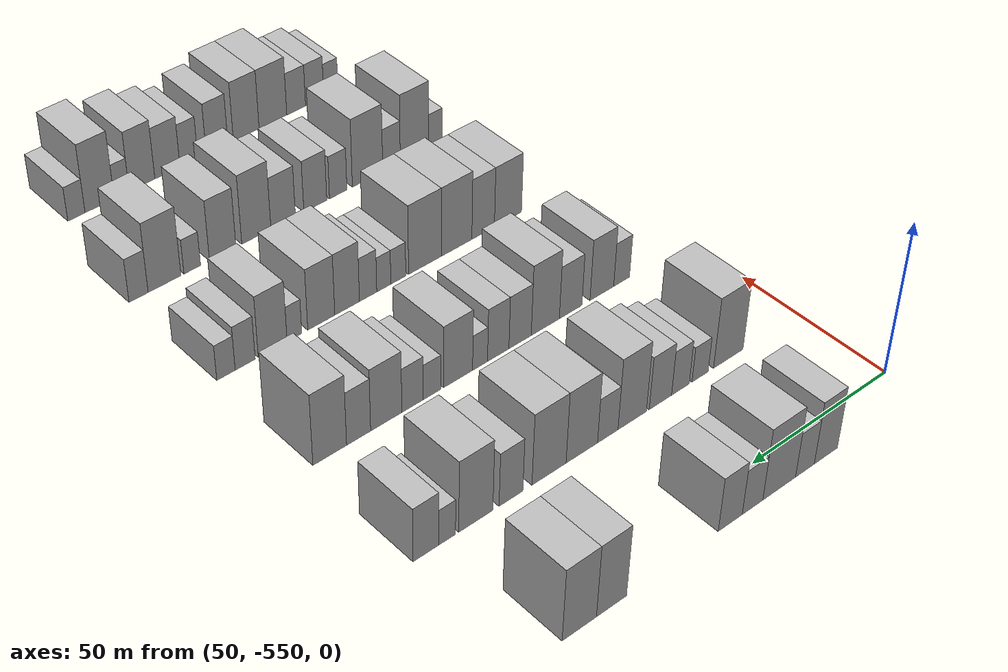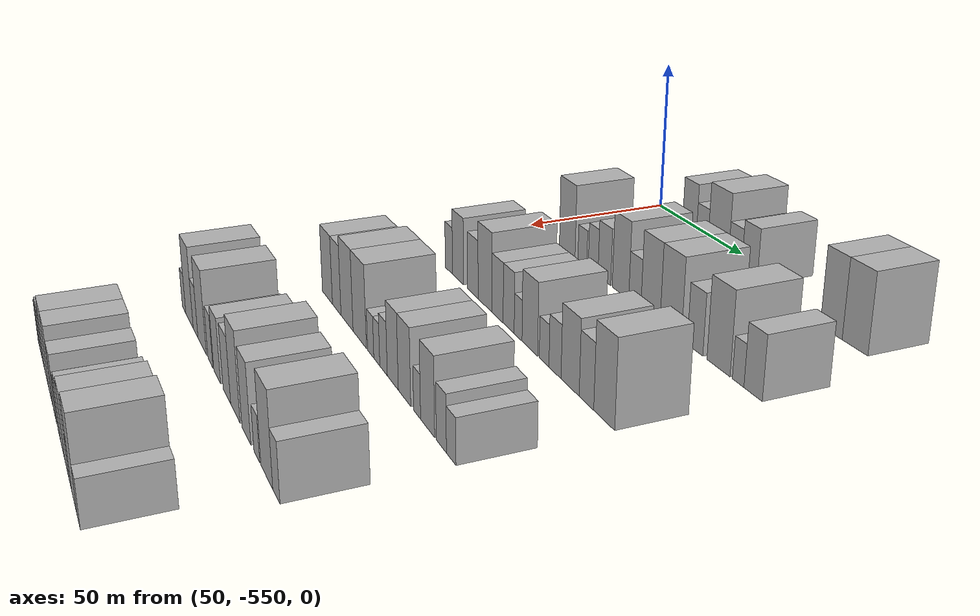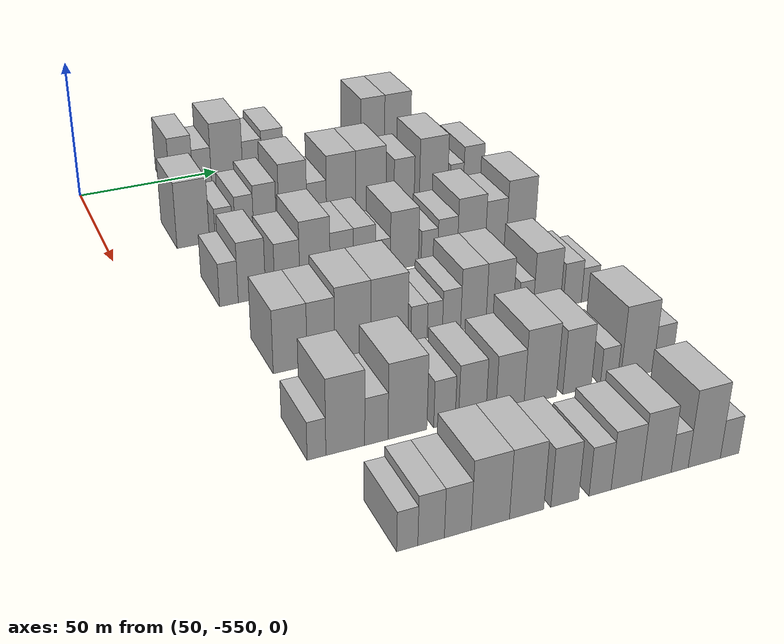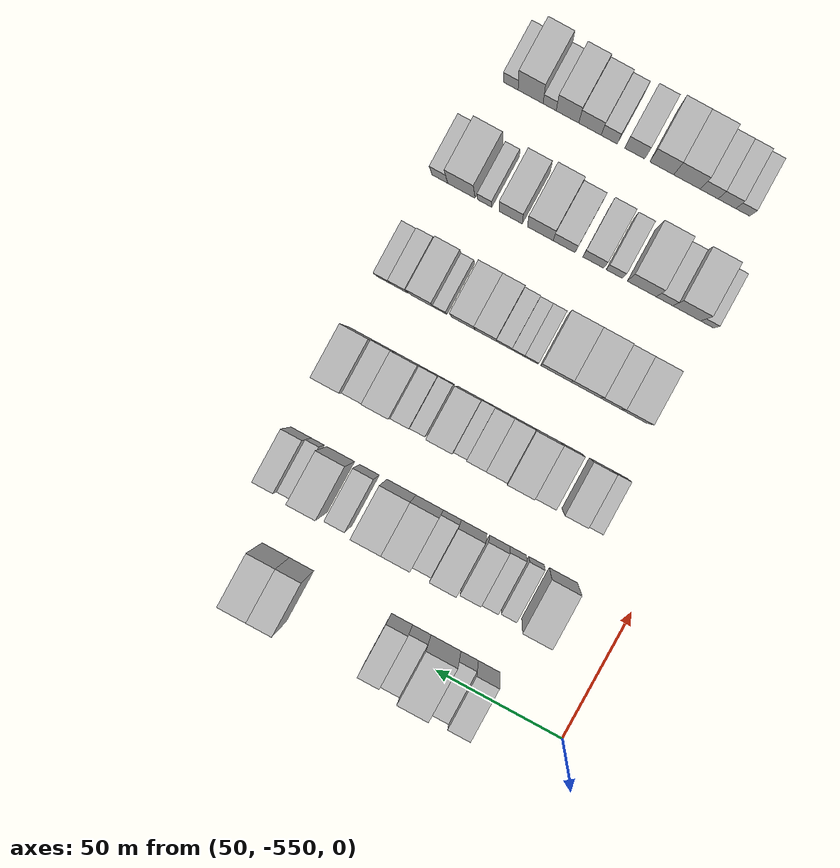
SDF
<sdf version="1.6">
 <world name="default">
  <model name="building_13">
   <static>1</static>
   <pose>50.0000 -515.6574 0 0.000000 0.000000 0.000000</pose>
   <link name="link">
    <pose>0 0 10.50 0 0 0</pose>
    <collision name="collision"><geometry><box><size>20.0000 8.5687 21.0000</size></box></geometry></collision>
    <visual name="visual">
     <cast_shadows>0</cast_shadows>
     <geometry><box><size>20.0000 8.5687 21.0000</size></box></geometry>
     <material>
      <script>
       <uri>model://HANNAS_wall/materials/scripts</uri>
       <uri>model://HANNAS_wall/materials/textures</uri>
       <name>vrc/HANNAS_wall</name>
      </script>
     </material>
    </visual>
   </link>
  </model>
  <model name="building_14">
   <static>1</static>
   <pose>50.0000 -507.9430 0 0.000000 0.000000 0.000000</pose>
   <link name="link">
    <pose>0 0 7.50 0 0 0</pose>
    <collision name="collision"><geometry><box><size>20.0000 6.8602 15.0000</size></box></geometry></collision>
    <visual name="visual">
     <cast_shadows>0</cast_shadows>
     <geometry><box><size>20.0000 6.8602 15.0000</size></box></geometry>
     <material>
      <script>
       <uri>model://HANNAS_wall/materials/scripts</uri>
       <uri>model://HANNAS_wall/materials/textures</uri>
       <name>vrc/HANNAS_wall</name>
      </script>
     </material>
    </visual>
   </link>
  </model>
  <model name="building_15">
   <static>1</static>
   <pose>50.0000 -498.6184 0 0.000000 0.000000 0.000000</pose>
   <link name="link">
    <pose>0 0 12.00 0 0 0</pose>
    <collision name="collision"><geometry><box><size>20.0000 11.7889 24.0000</size></box></geometry></collision>
    <visual name="visual">
     <cast_shadows>0</cast_shadows>
     <geometry><box><size>20.0000 11.7889 24.0000</size></box></geometry>
     <material>
      <script>
       <uri>model://HANNAS_wall/materials/scripts</uri>
       <uri>model://HANNAS_wall/materials/textures</uri>
       <name>vrc/HANNAS_wall</name>
      </script>
     </material>
    </visual>
   </link>
  </model>
  <model name="building_16">
   <static>1</static>
   <pose>50.0000 -489.0953 0 0.000000 0.000000 0.000000</pose>
   <link name="link">
    <pose>0 0 7.50 0 0 0</pose>
    <collision name="collision"><geometry><box><size>20.0000 7.2573 15.0000</size></box></geometry></collision>
    <visual name="visual">
     <cast_shadows>0</cast_shadows>
     <geometry><box><size>20.0000 7.2573 15.0000</size></box></geometry>
     <material>
      <script>
       <uri>model://HANNAS_wall/materials/scripts</uri>
       <uri>model://HANNAS_wall/materials/textures</uri>
       <name>vrc/HANNAS_wall</name>
      </script>
     </material>
    </visual>
   </link>
  </model>
  <model name="building_17">
   <static>1</static>
   <pose>50.0000 -481.3041 0 0.000000 0.000000 0.000000</pose>
   <link name="link">
    <pose>0 0 9.00 0 0 0</pose>
    <collision name="collision"><geometry><box><size>20.0000 8.3250 18.0000</size></box></geometry></collision>
    <visual name="visual">
     <cast_shadows>0</cast_shadows>
     <geometry><box><size>20.0000 8.3250 18.0000</size></box></geometry>
     <material>
      <script>
       <uri>model://HANNAS_wall/materials/scripts</uri>
       <uri>model://HANNAS_wall/materials/textures</uri>
       <name>vrc/HANNAS_wall</name>
      </script>
     </material>
    </visual>
   </link>
  </model>
  <model name="building_18">
   <static>1</static>
   <pose>50.0000 -441.7151 0 0.000000 0.000000 0.000000</pose>
   <link name="link">
    <pose>0 0 12.00 0 0 0</pose>
    <collision name="collision"><geometry><box><size>20.0000 9.6177 24.0000</size></box></geometry></collision>
    <visual name="visual">
     <cast_shadows>0</cast_shadows>
     <geometry><box><size>20.0000 9.6177 24.0000</size></box></geometry>
     <material>
      <script>
       <uri>model://HANNAS_wall/materials/scripts</uri>
       <uri>model://HANNAS_wall/materials/textures</uri>
       <name>vrc/HANNAS_wall</name>
      </script>
     </material>
    </visual>
   </link>
  </model>
  <model name="building_19">
   <static>1</static>
   <pose>50.0000 -431.5230 0 0.000000 0.000000 0.000000</pose>
   <link name="link">
    <pose>0 0 12.00 0 0 0</pose>
    <collision name="collision"><geometry><box><size>20.0000 10.7665 24.0000</size></box></geometry></collision>
    <visual name="visual">
     <cast_shadows>0</cast_shadows>
     <geometry><box><size>20.0000 10.7665 24.0000</size></box></geometry>
     <material>
      <script>
       <uri>model://HANNAS_wall/materials/scripts</uri>
       <uri>model://HANNAS_wall/materials/textures</uri>
       <name>vrc/HANNAS_wall</name>
      </script>
     </material>
    </visual>
   </link>
  </model>
  <model name="building_151">
   <static>1</static>
   <pose>90.0000 -523.0743 0 0.000000 0.000000 0.000000</pose>
   <link name="link">
    <pose>0 0 12.00 0 0 0</pose>
    <collision name="collision"><geometry><box><size>20.0000 11.1314 24.0000</size></box></geometry></collision>
    <visual name="visual">
     <cast_shadows>0</cast_shadows>
     <geometry><box><size>20.0000 11.1314 24.0000</size></box></geometry>
     <material>
      <script>
       <uri>model://HANNAS_wall/materials/scripts</uri>
       <uri>model://HANNAS_wall/materials/textures</uri>
       <name>vrc/HANNAS_wall</name>
      </script>
     </material>
    </visual>
   </link>
  </model>
  <model name="building_152">
   <static>1</static>
   <pose>90.0000 -512.5120 0 0.000000 0.000000 0.000000</pose>
   <link name="link">
    <pose>0 0 6.00 0 0 0</pose>
    <collision name="collision"><geometry><box><size>20.0000 5.9932 12.0000</size></box></geometry></collision>
    <visual name="visual">
     <cast_shadows>0</cast_shadows>
     <geometry><box><size>20.0000 5.9932 12.0000</size></box></geometry>
     <material>
      <script>
       <uri>model://HANNAS_wall/materials/scripts</uri>
       <uri>model://HANNAS_wall/materials/textures</uri>
       <name>vrc/HANNAS_wall</name>
      </script>
     </material>
    </visual>
   </link>
  </model>
  <model name="building_153">
   <static>1</static>
   <pose>90.0000 -505.2845 0 0.000000 0.000000 0.000000</pose>
   <link name="link">
    <pose>0 0 7.50 0 0 0</pose>
    <collision name="collision"><geometry><box><size>20.0000 6.4617 15.0000</size></box></geometry></collision>
    <visual name="visual">
     <cast_shadows>0</cast_shadows>
     <geometry><box><size>20.0000 6.4617 15.0000</size></box></geometry>
     <material>
      <script>
       <uri>model://HANNAS_wall/materials/scripts</uri>
       <uri>model://HANNAS_wall/materials/textures</uri>
       <name>vrc/HANNAS_wall</name>
      </script>
     </material>
    </visual>
   </link>
  </model>
  <model name="building_154">
   <static>1</static>
   <pose>90.0000 -498.0248 0 0.000000 0.000000 0.000000</pose>
   <link name="link">
    <pose>0 0 9.00 0 0 0</pose>
    <collision name="collision"><geometry><box><size>20.0000 8.0578 18.0000</size></box></geometry></collision>
    <visual name="visual">
     <cast_shadows>0</cast_shadows>
     <geometry><box><size>20.0000 8.0578 18.0000</size></box></geometry>
     <material>
      <script>
       <uri>model://HANNAS_wall/materials/scripts</uri>
       <uri>model://HANNAS_wall/materials/textures</uri>
       <name>vrc/HANNAS_wall</name>
      </script>
     </material>
    </visual>
   </link>
  </model>
  <model name="building_155">
   <static>1</static>
   <pose>90.0000 -487.9658 0 0.000000 0.000000 0.000000</pose>
   <link name="link">
    <pose>0 0 12.00 0 0 0</pose>
    <collision name="collision"><geometry><box><size>20.0000 10.0601 24.0000</size></box></geometry></collision>
    <visual name="visual">
     <cast_shadows>0</cast_shadows>
     <geometry><box><size>20.0000 10.0601 24.0000</size></box></geometry>
     <material>
      <script>
       <uri>model://HANNAS_wall/materials/scripts</uri>
       <uri>model://HANNAS_wall/materials/textures</uri>
       <name>vrc/HANNAS_wall</name>
      </script>
     </material>
    </visual>
   </link>
  </model>
  <model name="building_156">
   <static>1</static>
   <pose>90.0000 -479.3739 0 0.000000 0.000000 0.000000</pose>
   <link name="link">
    <pose>0 0 7.50 0 0 0</pose>
    <collision name="collision"><geometry><box><size>20.0000 7.1236 15.0000</size></box></geometry></collision>
    <visual name="visual">
     <cast_shadows>0</cast_shadows>
     <geometry><box><size>20.0000 7.1236 15.0000</size></box></geometry>
     <material>
      <script>
       <uri>model://HANNAS_wall/materials/scripts</uri>
       <uri>model://HANNAS_wall/materials/textures</uri>
       <name>vrc/HANNAS_wall</name>
      </script>
     </material>
    </visual>
   </link>
  </model>
  <model name="building_157">
   <static>1</static>
   <pose>90.0000 -470.4318 0 0.000000 0.000000 0.000000</pose>
   <link name="link">
    <pose>0 0 12.00 0 0 0</pose>
    <collision name="collision"><geometry><box><size>20.0000 10.7606 24.0000</size></box></geometry></collision>
    <visual name="visual">
     <cast_shadows>0</cast_shadows>
     <geometry><box><size>20.0000 10.7606 24.0000</size></box></geometry>
     <material>
      <script>
       <uri>model://HANNAS_wall/materials/scripts</uri>
       <uri>model://HANNAS_wall/materials/textures</uri>
       <name>vrc/HANNAS_wall</name>
      </script>
     </material>
    </visual>
   </link>
  </model>
  <model name="building_158">
   <static>1</static>
   <pose>90.0000 -459.3377 0 0.000000 0.000000 0.000000</pose>
   <link name="link">
    <pose>0 0 12.00 0 0 0</pose>
    <collision name="collision"><geometry><box><size>20.0000 11.4274 24.0000</size></box></geometry></collision>
    <visual name="visual">
     <cast_shadows>0</cast_shadows>
     <geometry><box><size>20.0000 11.4274 24.0000</size></box></geometry>
     <material>
      <script>
       <uri>model://HANNAS_wall/materials/scripts</uri>
       <uri>model://HANNAS_wall/materials/textures</uri>
       <name>vrc/HANNAS_wall</name>
      </script>
     </material>
    </visual>
   </link>
  </model>
  <model name="building_159">
   <static>1</static>
   <pose>90.0000 -446.7403 0 0.000000 0.000000 0.000000</pose>
   <link name="link">
    <pose>0 0 9.00 0 0 0</pose>
    <collision name="collision"><geometry><box><size>20.0000 7.7676 18.0000</size></box></geometry></collision>
    <visual name="visual">
     <cast_shadows>0</cast_shadows>
     <geometry><box><size>20.0000 7.7676 18.0000</size></box></geometry>
     <material>
      <script>
       <uri>model://HANNAS_wall/materials/scripts</uri>
       <uri>model://HANNAS_wall/materials/textures</uri>
       <name>vrc/HANNAS_wall</name>
      </script>
     </material>
    </visual>
   </link>
  </model>
  <model name="building_160">
   <static>1</static>
   <pose>90.0000 -435.3931 0 0.000000 0.000000 0.000000</pose>
   <link name="link">
    <pose>0 0 12.00 0 0 0</pose>
    <collision name="collision"><geometry><box><size>20.0000 10.9267 24.0000</size></box></geometry></collision>
    <visual name="visual">
     <cast_shadows>0</cast_shadows>
     <geometry><box><size>20.0000 10.9267 24.0000</size></box></geometry>
     <material>
      <script>
       <uri>model://HANNAS_wall/materials/scripts</uri>
       <uri>model://HANNAS_wall/materials/textures</uri>
       <name>vrc/HANNAS_wall</name>
      </script>
     </material>
    </visual>
   </link>
  </model>
  <model name="building_161">
   <static>1</static>
   <pose>90.0000 -426.3256 0 0.000000 0.000000 0.000000</pose>
   <link name="link">
    <pose>0 0 6.00 0 0 0</pose>
    <collision name="collision"><geometry><box><size>20.0000 5.2082 12.0000</size></box></geometry></collision>
    <visual name="visual">
     <cast_shadows>0</cast_shadows>
     <geometry><box><size>20.0000 5.2082 12.0000</size></box></geometry>
     <material>
      <script>
       <uri>model://HANNAS_wall/materials/scripts</uri>
       <uri>model://HANNAS_wall/materials/textures</uri>
       <name>vrc/HANNAS_wall</name>
      </script>
     </material>
    </visual>
   </link>
  </model>
  <model name="building_162">
   <static>1</static>
   <pose>90.0000 -419.7227 0 0.000000 0.000000 0.000000</pose>
   <link name="link">
    <pose>0 0 9.00 0 0 0</pose>
    <collision name="collision"><geometry><box><size>20.0000 7.9975 18.0000</size></box></geometry></collision>
    <visual name="visual">
     <cast_shadows>0</cast_shadows>
     <geometry><box><size>20.0000 7.9975 18.0000</size></box></geometry>
     <material>
      <script>
       <uri>model://HANNAS_wall/materials/scripts</uri>
       <uri>model://HANNAS_wall/materials/textures</uri>
       <name>vrc/HANNAS_wall</name>
      </script>
     </material>
    </visual>
   </link>
  </model>
  <model name="building_290">
   <static>1</static>
   <pose>130.0000 -523.4788 0 0.000000 0.000000 0.000000</pose>
   <link name="link">
    <pose>0 0 7.50 0 0 0</pose>
    <collision name="collision"><geometry><box><size>20.0000 6.0090 15.0000</size></box></geometry></collision>
    <visual name="visual">
     <cast_shadows>0</cast_shadows>
     <geometry><box><size>20.0000 6.0090 15.0000</size></box></geometry>
     <material>
      <script>
       <uri>model://HANNAS_wall/materials/scripts</uri>
       <uri>model://HANNAS_wall/materials/textures</uri>
       <name>vrc/HANNAS_wall</name>
      </script>
     </material>
    </visual>
   </link>
  </model>
  <model name="building_291">
   <static>1</static>
   <pose>130.0000 -516.0259 0 0.000000 0.000000 0.000000</pose>
   <link name="link">
    <pose>0 0 10.50 0 0 0</pose>
    <collision name="collision"><geometry><box><size>20.0000 8.8970 21.0000</size></box></geometry></collision>
    <visual name="visual">
     <cast_shadows>0</cast_shadows>
     <geometry><box><size>20.0000 8.8970 21.0000</size></box></geometry>
     <material>
      <script>
       <uri>model://HANNAS_wall/materials/scripts</uri>
       <uri>model://HANNAS_wall/materials/textures</uri>
       <name>vrc/HANNAS_wall</name>
      </script>
     </material>
    </visual>
   </link>
  </model>
  <model name="building_292">
   <static>1</static>
   <pose>130.0000 -504.4316 0 0.000000 0.000000 0.000000</pose>
   <link name="link">
    <pose>0 0 9.00 0 0 0</pose>
    <collision name="collision"><geometry><box><size>20.0000 8.2914 18.0000</size></box></geometry></collision>
    <visual name="visual">
     <cast_shadows>0</cast_shadows>
     <geometry><box><size>20.0000 8.2914 18.0000</size></box></geometry>
     <material>
      <script>
       <uri>model://HANNAS_wall/materials/scripts</uri>
       <uri>model://HANNAS_wall/materials/textures</uri>
       <name>vrc/HANNAS_wall</name>
      </script>
     </material>
    </visual>
   </link>
  </model>
  <model name="building_293">
   <static>1</static>
   <pose>130.0000 -495.2008 0 0.000000 0.000000 0.000000</pose>
   <link name="link">
    <pose>0 0 12.00 0 0 0</pose>
    <collision name="collision"><geometry><box><size>20.0000 10.1702 24.0000</size></box></geometry></collision>
    <visual name="visual">
     <cast_shadows>0</cast_shadows>
     <geometry><box><size>20.0000 10.1702 24.0000</size></box></geometry>
     <material>
      <script>
       <uri>model://HANNAS_wall/materials/scripts</uri>
       <uri>model://HANNAS_wall/materials/textures</uri>
       <name>vrc/HANNAS_wall</name>
      </script>
     </material>
    </visual>
   </link>
  </model>
  <model name="building_294">
   <static>1</static>
   <pose>130.0000 -486.1478 0 0.000000 0.000000 0.000000</pose>
   <link name="link">
    <pose>0 0 9.00 0 0 0</pose>
    <collision name="collision"><geometry><box><size>20.0000 7.9358 18.0000</size></box></geometry></collision>
    <visual name="visual">
     <cast_shadows>0</cast_shadows>
     <geometry><box><size>20.0000 7.9358 18.0000</size></box></geometry>
     <material>
      <script>
       <uri>model://HANNAS_wall/materials/scripts</uri>
       <uri>model://HANNAS_wall/materials/textures</uri>
       <name>vrc/HANNAS_wall</name>
      </script>
     </material>
    </visual>
   </link>
  </model>
  <model name="building_295">
   <static>1</static>
   <pose>130.0000 -478.4310 0 0.000000 0.000000 0.000000</pose>
   <link name="link">
    <pose>0 0 9.00 0 0 0</pose>
    <collision name="collision"><geometry><box><size>20.0000 7.4978 18.0000</size></box></geometry></collision>
    <visual name="visual">
     <cast_shadows>0</cast_shadows>
     <geometry><box><size>20.0000 7.4978 18.0000</size></box></geometry>
     <material>
      <script>
       <uri>model://HANNAS_wall/materials/scripts</uri>
       <uri>model://HANNAS_wall/materials/textures</uri>
       <name>vrc/HANNAS_wall</name>
      </script>
     </material>
    </visual>
   </link>
  </model>
  <model name="building_296">
   <static>1</static>
   <pose>130.0000 -472.0965 0 0.000000 0.000000 0.000000</pose>
   <link name="link">
    <pose>0 0 6.00 0 0 0</pose>
    <collision name="collision"><geometry><box><size>20.0000 5.1712 12.0000</size></box></geometry></collision>
    <visual name="visual">
     <cast_shadows>0</cast_shadows>
     <geometry><box><size>20.0000 5.1712 12.0000</size></box></geometry>
     <material>
      <script>
       <uri>model://HANNAS_wall/materials/scripts</uri>
       <uri>model://HANNAS_wall/materials/textures</uri>
       <name>vrc/HANNAS_wall</name>
      </script>
     </material>
    </visual>
   </link>
  </model>
  <model name="building_297">
   <static>1</static>
   <pose>130.0000 -464.5566 0 0.000000 0.000000 0.000000</pose>
   <link name="link">
    <pose>0 0 10.50 0 0 0</pose>
    <collision name="collision"><geometry><box><size>20.0000 9.9086 21.0000</size></box></geometry></collision>
    <visual name="visual">
     <cast_shadows>0</cast_shadows>
     <geometry><box><size>20.0000 9.9086 21.0000</size></box></geometry>
     <material>
      <script>
       <uri>model://HANNAS_wall/materials/scripts</uri>
       <uri>model://HANNAS_wall/materials/textures</uri>
       <name>vrc/HANNAS_wall</name>
      </script>
     </material>
    </visual>
   </link>
  </model>
  <model name="building_298">
   <static>1</static>
   <pose>130.0000 -455.6676 0 0.000000 0.000000 0.000000</pose>
   <link name="link">
    <pose>0 0 6.00 0 0 0</pose>
    <collision name="collision"><geometry><box><size>20.0000 5.8694 12.0000</size></box></geometry></collision>
    <visual name="visual">
     <cast_shadows>0</cast_shadows>
     <geometry><box><size>20.0000 5.8694 12.0000</size></box></geometry>
     <material>
      <script>
       <uri>model://HANNAS_wall/materials/scripts</uri>
       <uri>model://HANNAS_wall/materials/textures</uri>
       <name>vrc/HANNAS_wall</name>
      </script>
     </material>
    </visual>
   </link>
  </model>
  <model name="building_299">
   <static>1</static>
   <pose>130.0000 -449.1960 0 0.000000 0.000000 0.000000</pose>
   <link name="link">
    <pose>0 0 7.50 0 0 0</pose>
    <collision name="collision"><geometry><box><size>20.0000 7.0737 15.0000</size></box></geometry></collision>
    <visual name="visual">
     <cast_shadows>0</cast_shadows>
     <geometry><box><size>20.0000 7.0737 15.0000</size></box></geometry>
     <material>
      <script>
       <uri>model://HANNAS_wall/materials/scripts</uri>
       <uri>model://HANNAS_wall/materials/textures</uri>
       <name>vrc/HANNAS_wall</name>
      </script>
     </material>
    </visual>
   </link>
  </model>
  <model name="building_300">
   <static>1</static>
   <pose>130.0000 -440.5714 0 0.000000 0.000000 0.000000</pose>
   <link name="link">
    <pose>0 0 10.50 0 0 0</pose>
    <collision name="collision"><geometry><box><size>20.0000 10.1754 21.0000</size></box></geometry></collision>
    <visual name="visual">
     <cast_shadows>0</cast_shadows>
     <geometry><box><size>20.0000 10.1754 21.0000</size></box></geometry>
     <material>
      <script>
       <uri>model://HANNAS_wall/materials/scripts</uri>
       <uri>model://HANNAS_wall/materials/textures</uri>
       <name>vrc/HANNAS_wall</name>
      </script>
     </material>
    </visual>
   </link>
  </model>
  <model name="building_301">
   <static>1</static>
   <pose>130.0000 -431.6168 0 0.000000 0.000000 0.000000</pose>
   <link name="link">
    <pose>0 0 9.00 0 0 0</pose>
    <collision name="collision"><geometry><box><size>20.0000 7.7340 18.0000</size></box></geometry></collision>
    <visual name="visual">
     <cast_shadows>0</cast_shadows>
     <geometry><box><size>20.0000 7.7340 18.0000</size></box></geometry>
     <material>
      <script>
       <uri>model://HANNAS_wall/materials/scripts</uri>
       <uri>model://HANNAS_wall/materials/textures</uri>
       <name>vrc/HANNAS_wall</name>
      </script>
     </material>
    </visual>
   </link>
  </model>
  <model name="building_302">
   <static>1</static>
   <pose>130.0000 -422.4310 0 0.000000 0.000000 0.000000</pose>
   <link name="link">
    <pose>0 0 12.00 0 0 0</pose>
    <collision name="collision"><geometry><box><size>20.0000 10.6376 24.0000</size></box></geometry></collision>
    <visual name="visual">
     <cast_shadows>0</cast_shadows>
     <geometry><box><size>20.0000 10.6376 24.0000</size></box></geometry>
     <material>
      <script>
       <uri>model://HANNAS_wall/materials/scripts</uri>
       <uri>model://HANNAS_wall/materials/textures</uri>
       <name>vrc/HANNAS_wall</name>
      </script>
     </material>
    </visual>
   </link>
  </model>
  <model name="building_427">
   <static>1</static>
   <pose>170.0000 -517.9724 0 0.000000 0.000000 0.000000</pose>
   <link name="link">
    <pose>0 0 10.50 0 0 0</pose>
    <collision name="collision"><geometry><box><size>20.0000 10.2643 21.0000</size></box></geometry></collision>
    <visual name="visual">
     <cast_shadows>0</cast_shadows>
     <geometry><box><size>20.0000 10.2643 21.0000</size></box></geometry>
     <material>
      <script>
       <uri>model://HANNAS_wall/materials/scripts</uri>
       <uri>model://HANNAS_wall/materials/textures</uri>
       <name>vrc/HANNAS_wall</name>
      </script>
     </material>
    </visual>
   </link>
  </model>
  <model name="building_428">
   <static>1</static>
   <pose>170.0000 -508.6323 0 0.000000 0.000000 0.000000</pose>
   <link name="link">
    <pose>0 0 10.50 0 0 0</pose>
    <collision name="collision"><geometry><box><size>20.0000 8.4159 21.0000</size></box></geometry></collision>
    <visual name="visual">
     <cast_shadows>0</cast_shadows>
     <geometry><box><size>20.0000 8.4159 21.0000</size></box></geometry>
     <material>
      <script>
       <uri>model://HANNAS_wall/materials/scripts</uri>
       <uri>model://HANNAS_wall/materials/textures</uri>
       <name>vrc/HANNAS_wall</name>
      </script>
     </material>
    </visual>
   </link>
  </model>
  <model name="building_429">
   <static>1</static>
   <pose>170.0000 -498.7959 0 0.000000 0.000000 0.000000</pose>
   <link name="link">
    <pose>0 0 12.00 0 0 0</pose>
    <collision name="collision"><geometry><box><size>20.0000 11.2569 24.0000</size></box></geometry></collision>
    <visual name="visual">
     <cast_shadows>0</cast_shadows>
     <geometry><box><size>20.0000 11.2569 24.0000</size></box></geometry>
     <material>
      <script>
       <uri>model://HANNAS_wall/materials/scripts</uri>
       <uri>model://HANNAS_wall/materials/textures</uri>
       <name>vrc/HANNAS_wall</name>
      </script>
     </material>
    </visual>
   </link>
  </model>
  <model name="building_430">
   <static>1</static>
   <pose>170.0000 -487.2842 0 0.000000 0.000000 0.000000</pose>
   <link name="link">
    <pose>0 0 12.00 0 0 0</pose>
    <collision name="collision"><geometry><box><size>20.0000 11.7665 24.0000</size></box></geometry></collision>
    <visual name="visual">
     <cast_shadows>0</cast_shadows>
     <geometry><box><size>20.0000 11.7665 24.0000</size></box></geometry>
     <material>
      <script>
       <uri>model://HANNAS_wall/materials/scripts</uri>
       <uri>model://HANNAS_wall/materials/textures</uri>
       <name>vrc/HANNAS_wall</name>
      </script>
     </material>
    </visual>
   </link>
  </model>
  <model name="building_431">
   <static>1</static>
   <pose>170.0000 -477.7583 0 0.000000 0.000000 0.000000</pose>
   <link name="link">
    <pose>0 0 6.00 0 0 0</pose>
    <collision name="collision"><geometry><box><size>20.0000 5.2854 12.0000</size></box></geometry></collision>
    <visual name="visual">
     <cast_shadows>0</cast_shadows>
     <geometry><box><size>20.0000 5.2854 12.0000</size></box></geometry>
     <material>
      <script>
       <uri>model://HANNAS_wall/materials/scripts</uri>
       <uri>model://HANNAS_wall/materials/textures</uri>
       <name>vrc/HANNAS_wall</name>
      </script>
     </material>
    </visual>
   </link>
  </model>
  <model name="building_432">
   <static>1</static>
   <pose>170.0000 -472.6568 0 0.000000 0.000000 0.000000</pose>
   <link name="link">
    <pose>0 0 6.00 0 0 0</pose>
    <collision name="collision"><geometry><box><size>20.0000 4.9176 12.0000</size></box></geometry></collision>
    <visual name="visual">
     <cast_shadows>0</cast_shadows>
     <geometry><box><size>20.0000 4.9176 12.0000</size></box></geometry>
     <material>
      <script>
       <uri>model://HANNAS_wall/materials/scripts</uri>
       <uri>model://HANNAS_wall/materials/textures</uri>
       <name>vrc/HANNAS_wall</name>
      </script>
     </material>
    </visual>
   </link>
  </model>
  <model name="building_433">
   <static>1</static>
   <pose>170.0000 -467.1956 0 0.000000 0.000000 0.000000</pose>
   <link name="link">
    <pose>0 0 7.50 0 0 0</pose>
    <collision name="collision"><geometry><box><size>20.0000 6.0046 15.0000</size></box></geometry></collision>
    <visual name="visual">
     <cast_shadows>0</cast_shadows>
     <geometry><box><size>20.0000 6.0046 15.0000</size></box></geometry>
     <material>
      <script>
       <uri>model://HANNAS_wall/materials/scripts</uri>
       <uri>model://HANNAS_wall/materials/textures</uri>
       <name>vrc/HANNAS_wall</name>
      </script>
     </material>
    </visual>
   </link>
  </model>
  <model name="building_434">
   <static>1</static>
   <pose>170.0000 -459.9636 0 0.000000 0.000000 0.000000</pose>
   <link name="link">
    <pose>0 0 10.50 0 0 0</pose>
    <collision name="collision"><geometry><box><size>20.0000 8.4595 21.0000</size></box></geometry></collision>
    <visual name="visual">
     <cast_shadows>0</cast_shadows>
     <geometry><box><size>20.0000 8.4595 21.0000</size></box></geometry>
     <material>
      <script>
       <uri>model://HANNAS_wall/materials/scripts</uri>
       <uri>model://HANNAS_wall/materials/textures</uri>
       <name>vrc/HANNAS_wall</name>
      </script>
     </material>
    </visual>
   </link>
  </model>
  <model name="building_435">
   <static>1</static>
   <pose>170.0000 -451.1686 0 0.000000 0.000000 0.000000</pose>
   <link name="link">
    <pose>0 0 10.50 0 0 0</pose>
    <collision name="collision"><geometry><box><size>20.0000 9.1303 21.0000</size></box></geometry></collision>
    <visual name="visual">
     <cast_shadows>0</cast_shadows>
     <geometry><box><size>20.0000 9.1303 21.0000</size></box></geometry>
     <material>
      <script>
       <uri>model://HANNAS_wall/materials/scripts</uri>
       <uri>model://HANNAS_wall/materials/textures</uri>
       <name>vrc/HANNAS_wall</name>
      </script>
     </material>
    </visual>
   </link>
  </model>
  <model name="building_436">
   <static>1</static>
   <pose>170.0000 -442.1681 0 0.000000 0.000000 0.000000</pose>
   <link name="link">
    <pose>0 0 6.00 0 0 0</pose>
    <collision name="collision"><geometry><box><size>20.0000 4.8708 12.0000</size></box></geometry></collision>
    <visual name="visual">
     <cast_shadows>0</cast_shadows>
     <geometry><box><size>20.0000 4.8708 12.0000</size></box></geometry>
     <material>
      <script>
       <uri>model://HANNAS_wall/materials/scripts</uri>
       <uri>model://HANNAS_wall/materials/textures</uri>
       <name>vrc/HANNAS_wall</name>
      </script>
     </material>
    </visual>
   </link>
  </model>
  <model name="building_437">
   <static>1</static>
   <pose>170.0000 -435.0082 0 0.000000 0.000000 0.000000</pose>
   <link name="link">
    <pose>0 0 10.50 0 0 0</pose>
    <collision name="collision"><geometry><box><size>20.0000 9.4490 21.0000</size></box></geometry></collision>
    <visual name="visual">
     <cast_shadows>0</cast_shadows>
     <geometry><box><size>20.0000 9.4490 21.0000</size></box></geometry>
     <material>
      <script>
       <uri>model://HANNAS_wall/materials/scripts</uri>
       <uri>model://HANNAS_wall/materials/textures</uri>
       <name>vrc/HANNAS_wall</name>
      </script>
     </material>
    </visual>
   </link>
  </model>
  <model name="building_438">
   <static>1</static>
   <pose>170.0000 -426.0553 0 0.000000 0.000000 0.000000</pose>
   <link name="link">
    <pose>0 0 7.50 0 0 0</pose>
    <collision name="collision"><geometry><box><size>20.0000 6.4570 15.0000</size></box></geometry></collision>
    <visual name="visual">
     <cast_shadows>0</cast_shadows>
     <geometry><box><size>20.0000 6.4570 15.0000</size></box></geometry>
     <material>
      <script>
       <uri>model://HANNAS_wall/materials/scripts</uri>
       <uri>model://HANNAS_wall/materials/textures</uri>
       <name>vrc/HANNAS_wall</name>
      </script>
     </material>
    </visual>
   </link>
  </model>
  <model name="building_439">
   <static>1</static>
   <pose>170.0000 -419.8912 0 0.000000 0.000000 0.000000</pose>
   <link name="link">
    <pose>0 0 6.00 0 0 0</pose>
    <collision name="collision"><geometry><box><size>20.0000 5.8712 12.0000</size></box></geometry></collision>
    <visual name="visual">
     <cast_shadows>0</cast_shadows>
     <geometry><box><size>20.0000 5.8712 12.0000</size></box></geometry>
     <material>
      <script>
       <uri>model://HANNAS_wall/materials/scripts</uri>
       <uri>model://HANNAS_wall/materials/textures</uri>
       <name>vrc/HANNAS_wall</name>
      </script>
     </material>
    </visual>
   </link>
  </model>
  <model name="building_568">
   <static>1</static>
   <pose>210.0000 -525.2670 0 0.000000 0.000000 0.000000</pose>
   <link name="link">
    <pose>0 0 6.00 0 0 0</pose>
    <collision name="collision"><geometry><box><size>20.0000 5.1947 12.0000</size></box></geometry></collision>
    <visual name="visual">
     <cast_shadows>0</cast_shadows>
     <geometry><box><size>20.0000 5.1947 12.0000</size></box></geometry>
     <material>
      <script>
       <uri>model://HANNAS_wall/materials/scripts</uri>
       <uri>model://HANNAS_wall/materials/textures</uri>
       <name>vrc/HANNAS_wall</name>
      </script>
     </material>
    </visual>
   </link>
  </model>
  <model name="building_569">
   <static>1</static>
   <pose>210.0000 -517.2285 0 0.000000 0.000000 0.000000</pose>
   <link name="link">
    <pose>0 0 12.00 0 0 0</pose>
    <collision name="collision"><geometry><box><size>20.0000 10.8822 24.0000</size></box></geometry></collision>
    <visual name="visual">
     <cast_shadows>0</cast_shadows>
     <geometry><box><size>20.0000 10.8822 24.0000</size></box></geometry>
     <material>
      <script>
       <uri>model://HANNAS_wall/materials/scripts</uri>
       <uri>model://HANNAS_wall/materials/textures</uri>
       <name>vrc/HANNAS_wall</name>
      </script>
     </material>
    </visual>
   </link>
  </model>
  <model name="building_570">
   <static>1</static>
   <pose>210.0000 -508.4747 0 0.000000 0.000000 0.000000</pose>
   <link name="link">
    <pose>0 0 7.50 0 0 0</pose>
    <collision name="collision"><geometry><box><size>20.0000 6.6255 15.0000</size></box></geometry></collision>
    <visual name="visual">
     <cast_shadows>0</cast_shadows>
     <geometry><box><size>20.0000 6.6255 15.0000</size></box></geometry>
     <material>
      <script>
       <uri>model://HANNAS_wall/materials/scripts</uri>
       <uri>model://HANNAS_wall/materials/textures</uri>
       <name>vrc/HANNAS_wall</name>
      </script>
     </material>
    </visual>
   </link>
  </model>
  <model name="building_571">
   <static>1</static>
   <pose>210.0000 -499.5138 0 0.000000 0.000000 0.000000</pose>
   <link name="link">
    <pose>0 0 12.00 0 0 0</pose>
    <collision name="collision"><geometry><box><size>20.0000 11.2963 24.0000</size></box></geometry></collision>
    <visual name="visual">
     <cast_shadows>0</cast_shadows>
     <geometry><box><size>20.0000 11.2963 24.0000</size></box></geometry>
     <material>
      <script>
       <uri>model://HANNAS_wall/materials/scripts</uri>
       <uri>model://HANNAS_wall/materials/textures</uri>
       <name>vrc/HANNAS_wall</name>
      </script>
     </material>
    </visual>
   </link>
  </model>
  <model name="building_572">
   <static>1</static>
   <pose>210.0000 -488.6923 0 0.000000 0.000000 0.000000</pose>
   <link name="link">
    <pose>0 0 7.50 0 0 0</pose>
    <collision name="collision"><geometry><box><size>20.0000 6.3469 15.0000</size></box></geometry></collision>
    <visual name="visual">
     <cast_shadows>0</cast_shadows>
     <geometry><box><size>20.0000 6.3469 15.0000</size></box></geometry>
     <material>
      <script>
       <uri>model://HANNAS_wall/materials/scripts</uri>
       <uri>model://HANNAS_wall/materials/textures</uri>
       <name>vrc/HANNAS_wall</name>
      </script>
     </material>
    </visual>
   </link>
  </model>
  <model name="building_573">
   <static>1</static>
   <pose>210.0000 -480.3914 0 0.000000 0.000000 0.000000</pose>
   <link name="link">
    <pose>0 0 9.00 0 0 0</pose>
    <collision name="collision"><geometry><box><size>20.0000 8.2549 18.0000</size></box></geometry></collision>
    <visual name="visual">
     <cast_shadows>0</cast_shadows>
     <geometry><box><size>20.0000 8.2549 18.0000</size></box></geometry>
     <material>
      <script>
       <uri>model://HANNAS_wall/materials/scripts</uri>
       <uri>model://HANNAS_wall/materials/textures</uri>
       <name>vrc/HANNAS_wall</name>
      </script>
     </material>
    </visual>
   </link>
  </model>
  <model name="building_574">
   <static>1</static>
   <pose>210.0000 -468.9360 0 0.000000 0.000000 0.000000</pose>
   <link name="link">
    <pose>0 0 9.00 0 0 0</pose>
    <collision name="collision"><geometry><box><size>20.0000 8.6558 18.0000</size></box></geometry></collision>
    <visual name="visual">
     <cast_shadows>0</cast_shadows>
     <geometry><box><size>20.0000 8.6558 18.0000</size></box></geometry>
     <material>
      <script>
       <uri>model://HANNAS_wall/materials/scripts</uri>
       <uri>model://HANNAS_wall/materials/textures</uri>
       <name>vrc/HANNAS_wall</name>
      </script>
     </material>
    </visual>
   </link>
  </model>
  <model name="building_575">
   <static>1</static>
   <pose>210.0000 -459.5415 0 0.000000 0.000000 0.000000</pose>
   <link name="link">
    <pose>0 0 12.00 0 0 0</pose>
    <collision name="collision"><geometry><box><size>20.0000 10.1333 24.0000</size></box></geometry></collision>
    <visual name="visual">
     <cast_shadows>0</cast_shadows>
     <geometry><box><size>20.0000 10.1333 24.0000</size></box></geometry>
     <material>
      <script>
       <uri>model://HANNAS_wall/materials/scripts</uri>
       <uri>model://HANNAS_wall/materials/textures</uri>
       <name>vrc/HANNAS_wall</name>
      </script>
     </material>
    </visual>
   </link>
  </model>
  <model name="building_576">
   <static>1</static>
   <pose>210.0000 -447.9634 0 0.000000 0.000000 0.000000</pose>
   <link name="link">
    <pose>0 0 10.50 0 0 0</pose>
    <collision name="collision"><geometry><box><size>20.0000 9.0229 21.0000</size></box></geometry></collision>
    <visual name="visual">
     <cast_shadows>0</cast_shadows>
     <geometry><box><size>20.0000 9.0229 21.0000</size></box></geometry>
     <material>
      <script>
       <uri>model://HANNAS_wall/materials/scripts</uri>
       <uri>model://HANNAS_wall/materials/textures</uri>
       <name>vrc/HANNAS_wall</name>
      </script>
     </material>
    </visual>
   </link>
  </model>
  <model name="building_577">
   <static>1</static>
   <pose>210.0000 -437.6733 0 0.000000 0.000000 0.000000</pose>
   <link name="link">
    <pose>0 0 6.00 0 0 0</pose>
    <collision name="collision"><geometry><box><size>20.0000 5.5573 12.0000</size></box></geometry></collision>
    <visual name="visual">
     <cast_shadows>0</cast_shadows>
     <geometry><box><size>20.0000 5.5573 12.0000</size></box></geometry>
     <material>
      <script>
       <uri>model://HANNAS_wall/materials/scripts</uri>
       <uri>model://HANNAS_wall/materials/textures</uri>
       <name>vrc/HANNAS_wall</name>
      </script>
     </material>
    </visual>
   </link>
  </model>
  <model name="building_578">
   <static>1</static>
   <pose>210.0000 -428.5011 0 0.000000 0.000000 0.000000</pose>
   <link name="link">
    <pose>0 0 12.00 0 0 0</pose>
    <collision name="collision"><geometry><box><size>20.0000 10.7872 24.0000</size></box></geometry></collision>
    <visual name="visual">
     <cast_shadows>0</cast_shadows>
     <geometry><box><size>20.0000 10.7872 24.0000</size></box></geometry>
     <material>
      <script>
       <uri>model://HANNAS_wall/materials/scripts</uri>
       <uri>model://HANNAS_wall/materials/textures</uri>
       <name>vrc/HANNAS_wall</name>
      </script>
     </material>
    </visual>
   </link>
  </model>
  <model name="building_579">
   <static>1</static>
   <pose>210.0000 -420.0010 0 0.000000 0.000000 0.000000</pose>
   <link name="link">
    <pose>0 0 7.50 0 0 0</pose>
    <collision name="collision"><geometry><box><size>20.0000 6.2128 15.0000</size></box></geometry></collision>
    <visual name="visual">
     <cast_shadows>0</cast_shadows>
     <geometry><box><size>20.0000 6.2128 15.0000</size></box></geometry>
     <material>
      <script>
       <uri>model://HANNAS_wall/materials/scripts</uri>
       <uri>model://HANNAS_wall/materials/textures</uri>
       <name>vrc/HANNAS_wall</name>
      </script>
     </material>
    </visual>
   </link>
  </model>
  <model name="building_702">
   <static>1</static>
   <pose>250.0000 -517.6064 0 0.000000 0.000000 0.000000</pose>
   <link name="link">
    <pose>0 0 6.00 0 0 0</pose>
    <collision name="collision"><geometry><box><size>20.0000 5.4779 12.0000</size></box></geometry></collision>
    <visual name="visual">
     <cast_shadows>0</cast_shadows>
     <geometry><box><size>20.0000 5.4779 12.0000</size></box></geometry>
     <material>
      <script>
       <uri>model://HANNAS_wall/materials/scripts</uri>
       <uri>model://HANNAS_wall/materials/textures</uri>
       <name>vrc/HANNAS_wall</name>
      </script>
     </material>
    </visual>
   </link>
  </model>
  <model name="building_703">
   <static>1</static>
   <pose>250.0000 -511.3871 0 0.000000 0.000000 0.000000</pose>
   <link name="link">
    <pose>0 0 7.50 0 0 0</pose>
    <collision name="collision"><geometry><box><size>20.0000 6.9608 15.0000</size></box></geometry></collision>
    <visual name="visual">
     <cast_shadows>0</cast_shadows>
     <geometry><box><size>20.0000 6.9608 15.0000</size></box></geometry>
     <material>
      <script>
       <uri>model://HANNAS_wall/materials/scripts</uri>
       <uri>model://HANNAS_wall/materials/textures</uri>
       <name>vrc/HANNAS_wall</name>
      </script>
     </material>
    </visual>
   </link>
  </model>
  <model name="building_704">
   <static>1</static>
   <pose>250.0000 -504.3421 0 0.000000 0.000000 0.000000</pose>
   <link name="link">
    <pose>0 0 7.50 0 0 0</pose>
    <collision name="collision"><geometry><box><size>20.0000 7.1293 15.0000</size></box></geometry></collision>
    <visual name="visual">
     <cast_shadows>0</cast_shadows>
     <geometry><box><size>20.0000 7.1293 15.0000</size></box></geometry>
     <material>
      <script>
       <uri>model://HANNAS_wall/materials/scripts</uri>
       <uri>model://HANNAS_wall/materials/textures</uri>
       <name>vrc/HANNAS_wall</name>
      </script>
     </material>
    </visual>
   </link>
  </model>
  <model name="building_705">
   <static>1</static>
   <pose>250.0000 -495.5883 0 0.000000 0.000000 0.000000</pose>
   <link name="link">
    <pose>0 0 10.50 0 0 0</pose>
    <collision name="collision"><geometry><box><size>20.0000 10.3782 21.0000</size></box></geometry></collision>
    <visual name="visual">
     <cast_shadows>0</cast_shadows>
     <geometry><box><size>20.0000 10.3782 21.0000</size></box></geometry>
     <material>
      <script>
       <uri>model://HANNAS_wall/materials/scripts</uri>
       <uri>model://HANNAS_wall/materials/textures</uri>
       <name>vrc/HANNAS_wall</name>
      </script>
     </material>
    </visual>
   </link>
  </model>
  <model name="building_706">
   <static>1</static>
   <pose>250.0000 -485.6673 0 0.000000 0.000000 0.000000</pose>
   <link name="link">
    <pose>0 0 10.50 0 0 0</pose>
    <collision name="collision"><geometry><box><size>20.0000 9.4637 21.0000</size></box></geometry></collision>
    <visual name="visual">
     <cast_shadows>0</cast_shadows>
     <geometry><box><size>20.0000 9.4637 21.0000</size></box></geometry>
     <material>
      <script>
       <uri>model://HANNAS_wall/materials/scripts</uri>
       <uri>model://HANNAS_wall/materials/textures</uri>
       <name>vrc/HANNAS_wall</name>
      </script>
     </material>
    </visual>
   </link>
  </model>
  <model name="building_707">
   <static>1</static>
   <pose>250.0000 -475.0161 0 0.000000 0.000000 0.000000</pose>
   <link name="link">
    <pose>0 0 9.00 0 0 0</pose>
    <collision name="collision"><geometry><box><size>20.0000 7.8387 18.0000</size></box></geometry></collision>
    <visual name="visual">
     <cast_shadows>0</cast_shadows>
     <geometry><box><size>20.0000 7.8387 18.0000</size></box></geometry>
     <material>
      <script>
       <uri>model://HANNAS_wall/materials/scripts</uri>
       <uri>model://HANNAS_wall/materials/textures</uri>
       <name>vrc/HANNAS_wall</name>
      </script>
     </material>
    </visual>
   </link>
  </model>
  <model name="building_708">
   <static>1</static>
   <pose>250.0000 -464.9238 0 0.000000 0.000000 0.000000</pose>
   <link name="link">
    <pose>0 0 7.50 0 0 0</pose>
    <collision name="collision"><geometry><box><size>20.0000 6.3459 15.0000</size></box></geometry></collision>
    <visual name="visual">
     <cast_shadows>0</cast_shadows>
     <geometry><box><size>20.0000 6.3459 15.0000</size></box></geometry>
     <material>
      <script>
       <uri>model://HANNAS_wall/materials/scripts</uri>
       <uri>model://HANNAS_wall/materials/textures</uri>
       <name>vrc/HANNAS_wall</name>
      </script>
     </material>
    </visual>
   </link>
  </model>
  <model name="building_709">
   <static>1</static>
   <pose>250.0000 -457.3317 0 0.000000 0.000000 0.000000</pose>
   <link name="link">
    <pose>0 0 9.00 0 0 0</pose>
    <collision name="collision"><geometry><box><size>20.0000 8.8383 18.0000</size></box></geometry></collision>
    <visual name="visual">
     <cast_shadows>0</cast_shadows>
     <geometry><box><size>20.0000 8.8383 18.0000</size></box></geometry>
     <material>
      <script>
       <uri>model://HANNAS_wall/materials/scripts</uri>
       <uri>model://HANNAS_wall/materials/textures</uri>
       <name>vrc/HANNAS_wall</name>
      </script>
     </material>
    </visual>
   </link>
  </model>
  <model name="building_710">
   <static>1</static>
   <pose>250.0000 -448.4692 0 0.000000 0.000000 0.000000</pose>
   <link name="link">
    <pose>0 0 10.50 0 0 0</pose>
    <collision name="collision"><geometry><box><size>20.0000 8.8867 21.0000</size></box></geometry></collision>
    <visual name="visual">
     <cast_shadows>0</cast_shadows>
     <geometry><box><size>20.0000 8.8867 21.0000</size></box></geometry>
     <material>
      <script>
       <uri>model://HANNAS_wall/materials/scripts</uri>
       <uri>model://HANNAS_wall/materials/textures</uri>
       <name>vrc/HANNAS_wall</name>
      </script>
     </material>
    </visual>
   </link>
  </model>
  <model name="building_711">
   <static>1</static>
   <pose>250.0000 -441.4453 0 0.000000 0.000000 0.000000</pose>
   <link name="link">
    <pose>0 0 6.00 0 0 0</pose>
    <collision name="collision"><geometry><box><size>20.0000 5.1610 12.0000</size></box></geometry></collision>
    <visual name="visual">
     <cast_shadows>0</cast_shadows>
     <geometry><box><size>20.0000 5.1610 12.0000</size></box></geometry>
     <material>
      <script>
       <uri>model://HANNAS_wall/materials/scripts</uri>
       <uri>model://HANNAS_wall/materials/textures</uri>
       <name>vrc/HANNAS_wall</name>
      </script>
     </material>
    </visual>
   </link>
  </model>
  <model name="building_712">
   <static>1</static>
   <pose>250.0000 -433.9479 0 0.000000 0.000000 0.000000</pose>
   <link name="link">
    <pose>0 0 12.00 0 0 0</pose>
    <collision name="collision"><geometry><box><size>20.0000 9.8338 24.0000</size></box></geometry></collision>
    <visual name="visual">
     <cast_shadows>0</cast_shadows>
     <geometry><box><size>20.0000 9.8338 24.0000</size></box></geometry>
     <material>
      <script>
       <uri>model://HANNAS_wall/materials/scripts</uri>
       <uri>model://HANNAS_wall/materials/textures</uri>
       <name>vrc/HANNAS_wall</name>
      </script>
     </material>
    </visual>
   </link>
  </model>
  <model name="building_713">
   <static>1</static>
   <pose>250.0000 -426.1512 0 0.000000 0.000000 0.000000</pose>
   <link name="link">
    <pose>0 0 6.00 0 0 0</pose>
    <collision name="collision"><geometry><box><size>20.0000 5.7597 12.0000</size></box></geometry></collision>
    <visual name="visual">
     <cast_shadows>0</cast_shadows>
     <geometry><box><size>20.0000 5.7597 12.0000</size></box></geometry>
     <material>
      <script>
       <uri>model://HANNAS_wall/materials/scripts</uri>
       <uri>model://HANNAS_wall/materials/textures</uri>
       <name>vrc/HANNAS_wall</name>
      </script>
     </material>
    </visual>
   </link>
  </model>
 </world>
</sdf>
